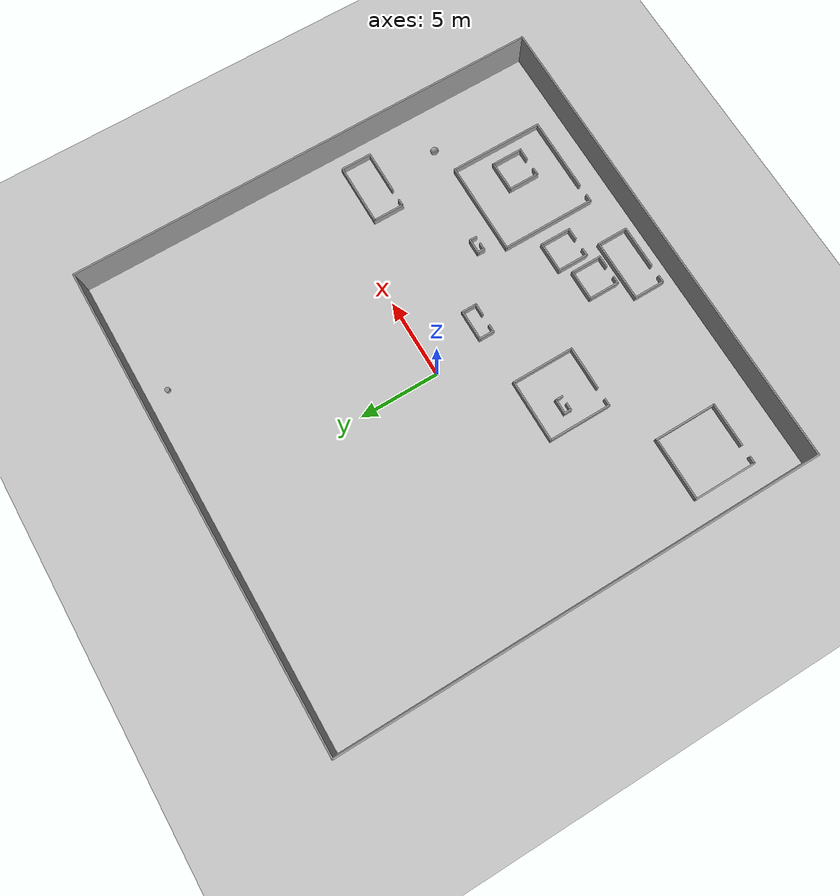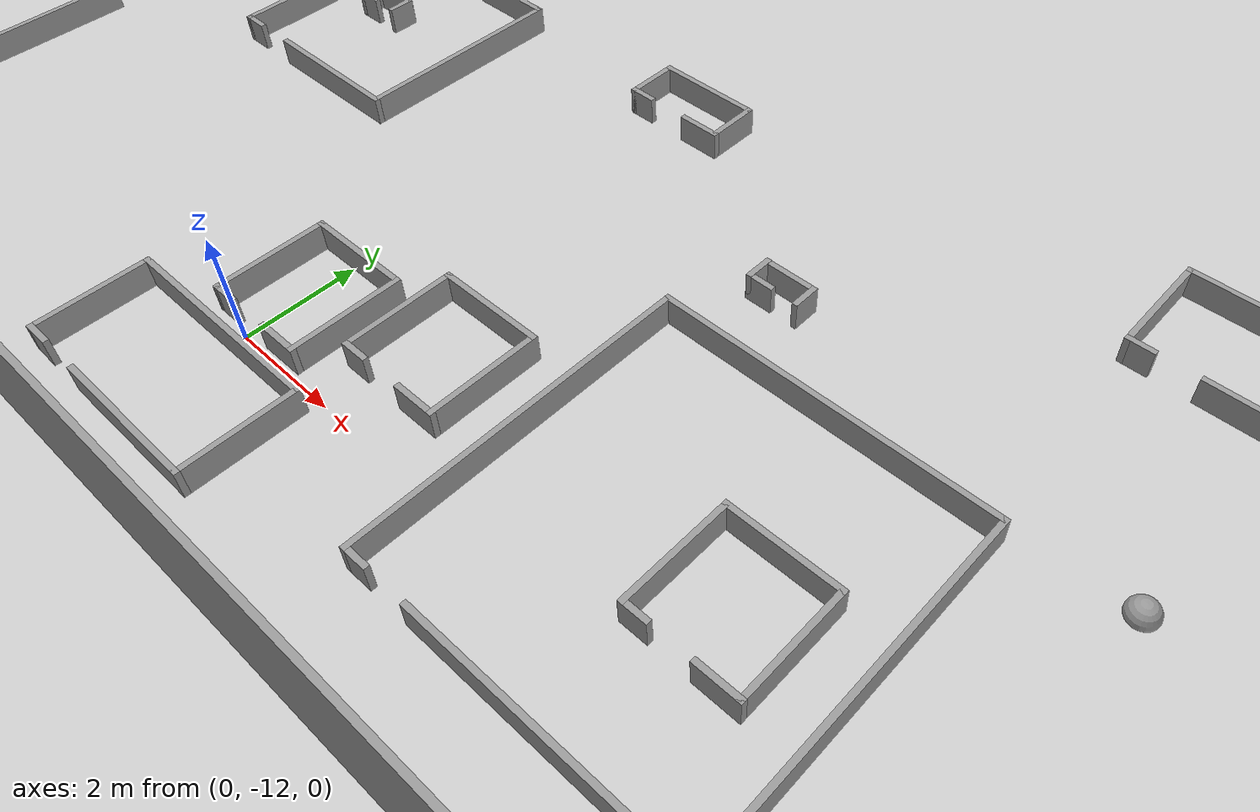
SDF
<sdf version="1.6">
 <world name="default">
  <model name="ground_plane">
   <static>1</static>
   <link name="link">
    <collision name="collision">
     <geometry><plane><normal>0 0 1</normal><size>30 30</size></plane></geometry>
     <surface>
      <contact><collide_bitmask>65535</collide_bitmask></contact>
      <friction><ode><mu>100</mu><mu2>50</mu2></ode></friction>
     </surface>
     <max_contacts>15</max_contacts>
    </collision>
    <visual name="visual">
     <cast_shadows>0</cast_shadows>
     <geometry><plane><normal>0 0 1</normal><size>30 30</size></plane></geometry>
     <material>
      <script><uri>file://media/materials/scripts/gazebo.material</uri><name>Gazebo/Grey</name></script>
     </material>
    </visual>
   </link>
  </model>
  <model name="outsidewall.sdf">
   <link name="Wall_3">
    <collision name="Wall_3_Collision">
     <geometry><box><size>30 0.10 2.5</size></box></geometry>
     <pose>0 0 1.25 0 -0 0</pose>
    </collision>
    <visual name="Wall_3_Visual">
     <pose>0 0 1.25 0 -0 0</pose>
     <geometry><box><size>30 0.10 2.5</size></box></geometry>
     <material>
      <script><uri>file://media/materials/scripts/gazebo.material</uri><name>Gazebo/Grey</name></script>
      <ambient>1 1 1 1</ambient>
     </material>
     <meta><layer>0</layer></meta>
    </visual>
    <pose>0 14.95 0 0 -0 0</pose>
   </link>
   <link name="Wall_5">
    <collision name="Wall_5_Collision">
     <geometry><box><size>30 0.10 2.5</size></box></geometry>
     <pose>0 0 1.25 0 -0 0</pose>
    </collision>
    <visual name="Wall_5_Visual">
     <pose>0 0 1.25 0 -0 0</pose>
     <geometry><box><size>30 0.10 2.5</size></box></geometry>
     <material>
      <script><uri>file://media/materials/scripts/gazebo.material</uri><name>Gazebo/Grey</name></script>
      <ambient>1 1 1 1</ambient>
     </material>
     <meta><layer>0</layer></meta>
    </visual>
    <pose>-14.95 0 0 0 -0 1.5707</pose>
   </link>
   <link name="Wall_6">
    <collision name="Wall_6_Collision">
     <geometry><box><size>30 0.10 2.5</size></box></geometry>
     <pose>0 0 1.25 0 -0 0</pose>
    </collision>
    <visual name="Wall_6_Visual">
     <pose>0 0 1.25 0 -0 0</pose>
     <geometry><box><size>30 0.10 2.5</size></box></geometry>
     <material>
      <script><uri>file://media/materials/scripts/gazebo.material</uri><name>Gazebo/Grey</name></script>
      <ambient>1 1 1 1</ambient>
     </material>
     <meta><layer>0</layer></meta>
    </visual>
    <pose>0 -14.95 0 0 -0 0</pose>
   </link>
   <link name="Wall_7">
    <collision name="Wall_7_Collision">
     <geometry><box><size>30 0.10 2.5</size></box></geometry>
     <pose>0 0 1.25 0 -0 0</pose>
    </collision>
    <visual name="Wall_7_Visual">
     <pose>0 0 1.25 0 -0 0</pose>
     <geometry><box><size>30 0.10 2.5</size></box></geometry>
     <material>
      <script><uri>file://media/materials/scripts/gazebo.material</uri><name>Gazebo/Grey</name></script>
      <ambient>1 1 1 1</ambient>
     </material>
     <meta><layer>0</layer></meta>
    </visual>
    <pose>14.95 0 0 0 -0 1.5707</pose>
   </link>
   <static>1</static>
  </model>
  <model name="shape7">
   <pose>7.4 -10.4 0 0 -0 0</pose>
   <link name="Wall_34">
    <collision name="Wall_34_Collision">
     <geometry><box><size>6 0.1 0.5</size></box></geometry>
     <pose>0 0 0.25 0 -0 0</pose>
    </collision>
    <visual name="Wall_34_Visual">
     <pose>0 0 0.25 0 -0 0</pose>
     <geometry><box><size>6 0.1 0.5</size></box></geometry>
     <material>
      <script><uri>file://media/materials/scripts/gazebo.material</uri><name>Gazebo/Grey</name></script>
      <ambient>1 1 1 1</ambient>
     </material>
     <meta><layer>0</layer></meta>
    </visual>
    <pose>0 2.95 0 0 -0 0</pose>
   </link>
   <link name="Wall_35">
    <collision name="Wall_35_Collision">
     <geometry><box><size>6 0.1 0.5</size></box></geometry>
     <pose>0 0 0.25 0 -0 0</pose>
    </collision>
    <visual name="Wall_35_Visual">
     <pose>0 0 0.25 0 -0 0</pose>
     <geometry><box><size>6 0.1 0.5</size></box></geometry>
     <material>
      <script><uri>file://media/materials/scripts/gazebo.material</uri><name>Gazebo/Grey</name></script>
      <ambient>1 1 1 1</ambient>
     </material>
     <meta><layer>0</layer></meta>
    </visual>
    <pose>2.95 0 0 0 -0 -1.5708</pose>
   </link>
   <link name="Wall_36">
    <collision name="Wall_36_Collision">
     <geometry><box><size>4.8 0.1 0.5</size></box></geometry>
     <pose>0 0 0.25 0 -0 0</pose>
    </collision>
    <visual name="Wall_36_Visual">
     <pose>0 0 0.25 0 -0 0</pose>
     <geometry><box><size>4.8 0.1 0.5</size></box></geometry>
     <material>
      <script><uri>file://media/materials/scripts/gazebo.material</uri><name>Gazebo/Grey</name></script>
      <ambient>1 1 1 1</ambient>
     </material>
     <meta><layer>0</layer></meta>
    </visual>
    <pose>0.6 -2.95 0 0 -0 3.14159</pose>
   </link>
   <link name="Wall_38">
    <collision name="Wall_38_Collision">
     <geometry><box><size>6 0.1 0.5</size></box></geometry>
     <pose>0 0 0.25 0 -0 0</pose>
    </collision>
    <visual name="Wall_38_Visual">
     <pose>0 0 0.25 0 -0 0</pose>
     <geometry><box><size>6 0.1 0.5</size></box></geometry>
     <material>
      <script><uri>file://media/materials/scripts/gazebo.material</uri><name>Gazebo/Grey</name></script>
      <ambient>1 1 1 1</ambient>
     </material>
     <meta><layer>0</layer></meta>
    </visual>
    <pose>-2.95 0 0 0 -0 -1.5708</pose>
   </link>
   <link name="Wall_39">
    <collision name="Wall_39_Collision">
     <geometry><box><size>0.5 0.1 0.5</size></box></geometry>
     <pose>0 0 0.25 0 -0 0</pose>
    </collision>
    <visual name="Wall_39_Visual">
     <pose>0 0 0.25 0 -0 0</pose>
     <geometry><box><size>0.5 0.1 0.5</size></box></geometry>
     <material>
      <script><uri>file://media/materials/scripts/gazebo.material</uri><name>Gazebo/Grey</name></script>
      <ambient>1 1 1 1</ambient>
     </material>
     <meta><layer>0</layer></meta>
    </visual>
    <pose>-2.75 -2.95 0 0 -0 0</pose>
   </link>
   <static>1</static>
  </model>
  <model name="shape2">
   <pose>11.9 -2.6 0 0 -0 0</pose>
   <link name="Wall_0">
    <collision name="Wall_0_Collision">
     <geometry><box><size>3.98685 0.1 0.5</size></box></geometry>
     <pose>0 0 0.25 0 -0 0</pose>
    </collision>
    <visual name="Wall_0_Visual">
     <pose>0 0 0.25 0 -0 0</pose>
     <geometry><box><size>3.98685 0.1 0.5</size></box></geometry>
     <material>
      <script><uri>file://media/materials/scripts/gazebo.material</uri><name>Gazebo/Grey</name></script>
      <ambient>1 1 1 1</ambient>
     </material>
     <meta><layer>0</layer></meta>
    </visual>
    <pose>0.003288 0.95 0 0 -0 0</pose>
   </link>
   <link name="Wall_1">
    <collision name="Wall_1_Collision">
     <geometry><box><size>2 0.1 0.5</size></box></geometry>
     <pose>0 0 0.25 0 -0 0</pose>
    </collision>
    <visual name="Wall_1_Visual">
     <pose>0 0 0.25 0 -0 0</pose>
     <geometry><box><size>2 0.1 0.5</size></box></geometry>
     <material>
      <script><uri>file://media/materials/scripts/gazebo.material</uri><name>Gazebo/Grey</name></script>
      <ambient>1 1 1 1</ambient>
     </material>
     <meta><layer>0</layer></meta>
    </visual>
    <pose>1.94671 0 0 0 -0 -1.5708</pose>
   </link>
   <link name="Wall_2">
    <collision name="Wall_2_Collision">
     <geometry><box><size>2.8 0.1 0.5</size></box></geometry>
     <pose>0 0 0.25 0 -0 0</pose>
    </collision>
    <visual name="Wall_2_Visual">
     <pose>0 0 0.25 0 -0 0</pose>
     <geometry><box><size>2.8 0.1 0.5</size></box></geometry>
     <material>
      <script><uri>file://media/materials/scripts/gazebo.material</uri><name>Gazebo/Grey</name></script>
      <ambient>1 1 1 1</ambient>
     </material>
     <meta><layer>0</layer></meta>
    </visual>
    <pose>0.596712 -0.95 0 0 -0 3.14159</pose>
   </link>
   <link name="Wall_4">
    <collision name="Wall_4_Collision">
     <geometry><box><size>2 0.1 0.5</size></box></geometry>
     <pose>0 0 0.25 0 -0 0</pose>
    </collision>
    <visual name="Wall_4_Visual">
     <pose>0 0 0.25 0 -0 0</pose>
     <geometry><box><size>2 0.1 0.5</size></box></geometry>
     <material>
      <script><uri>file://media/materials/scripts/gazebo.material</uri><name>Gazebo/Grey</name></script>
      <ambient>1 1 1 1</ambient>
     </material>
     <meta><layer>0</layer></meta>
    </visual>
    <pose>-1.94671 0 0 0 -0 -1.5708</pose>
   </link>
   <link name="Wall_5">
    <collision name="Wall_5_Collision">
     <geometry><box><size>0.5 0.1 0.5</size></box></geometry>
     <pose>0 0 0.25 0 -0 0</pose>
    </collision>
    <visual name="Wall_5_Visual">
     <pose>0 0 0.25 0 -0 0</pose>
     <geometry><box><size>0.5 0.1 0.5</size></box></geometry>
     <material>
      <script><uri>file://media/materials/scripts/gazebo.material</uri><name>Gazebo/Grey</name></script>
      <ambient>1 1 1 1</ambient>
     </material>
     <meta><layer>0</layer></meta>
    </visual>
    <pose>-1.74671 -0.95 0 0 -0 0</pose>
   </link>
   <static>1</static>
  </model>
  <model name="cylinder_d=30">
   <link name="link_0">
    <inertial>
     <mass>1</mass>
     <inertia><ixx>0.145833</ixx><ixy>0</ixy><ixz>0</ixz><iyy>0.145833</iyy><iyz>0</iyz><izz>0.125</izz></inertia>
    </inertial>
    <pose>7.05 13.65 0 0 -0 0</pose>
    <visual name="visual">
     <geometry><cylinder><radius>0.15</radius><length>0.5</length></cylinder></geometry>
     <material>
      <lighting>1</lighting>
      <script><uri>file://media/materials/scripts/gazebo.material</uri><name>Gazebo/Grey</name></script>
      <shader type="vertex"><normal_map>__default__</normal_map></shader>
      <ambient>0.3 0.3 0.3 1</ambient>
      <diffuse>0.7 0.7 0.7 1</diffuse>
      <specular>0.01 0.01 0.01 1</specular>
      <emissive>0 0 0 1</emissive>
     </material>
    </visual>
    <collision name="collision">
     <geometry><cylinder><radius>0.15</radius><length>0.5</length></cylinder></geometry>
     <surface>
      <friction>
       <ode><mu>1</mu><mu2>1</mu2><fdir1>0 0 0</fdir1><slip1>0</slip1><slip2>0</slip2></ode>
       <torsional>
        <coefficient>1</coefficient>
        <patch_radius>0</patch_radius>
        <surface_radius>0</surface_radius>
        <use_patch_radius>1</use_patch_radius>
        <ode><slip>0</slip></ode>
       </torsional>
      </friction>
      <bounce><restitution_coefficient>0</restitution_coefficient><threshold>1e+06</threshold></bounce>
      <contact>
       <collide_without_contact>0</collide_without_contact>
       <collide_without_contact_bitmask>1</collide_without_contact_bitmask>
       <collide_bitmask>1</collide_bitmask>
       <ode>
        <soft_cfm>0</soft_cfm>
        <soft_erp>0.2</soft_erp>
        <kp>1e+13</kp>
        <kd>1</kd>
        <max_vel>0.01</max_vel>
        <min_depth>0</min_depth>
       </ode>
       <bullet>
        <split_impulse>1</split_impulse>
        <split_impulse_penetration_threshold>-0.01</split_impulse_penetration_threshold>
        <soft_cfm>0</soft_cfm>
        <soft_erp>0.2</soft_erp>
        <kp>1e+13</kp>
        <kd>1</kd>
       </bullet>
      </contact>
     </surface>
    </collision>
   </link>
   <static>0</static>
  </model>
  <model name="shape5">
   <pose>2.6 -10.3 0 0 -0 0</pose>
   <link name="Wall_20">
    <collision name="Wall_20_Collision">
     <geometry><box><size>2 0.1 0.5</size></box></geometry>
     <pose>0 0 0.25 0 -0 0</pose>
    </collision>
    <visual name="Wall_20_Visual">
     <pose>0 0 0.25 0 -0 0</pose>
     <geometry><box><size>2 0.1 0.5</size></box></geometry>
     <material>
      <script><uri>file://media/materials/scripts/gazebo.material</uri><name>Gazebo/Grey</name></script>
      <ambient>1 1 1 1</ambient>
     </material>
     <meta><layer>0</layer></meta>
    </visual>
    <pose>-0 0.95 0 0 -0 0</pose>
   </link>
   <link name="Wall_21">
    <collision name="Wall_21_Collision">
     <geometry><box><size>2 0.1 0.5</size></box></geometry>
     <pose>0 0 0.25 0 -0 0</pose>
    </collision>
    <visual name="Wall_21_Visual">
     <pose>0 0 0.25 0 -0 0</pose>
     <geometry><box><size>2 0.1 0.5</size></box></geometry>
     <material>
      <script><uri>file://media/materials/scripts/gazebo.material</uri><name>Gazebo/Grey</name></script>
      <ambient>1 1 1 1</ambient>
     </material>
     <meta><layer>0</layer></meta>
    </visual>
    <pose>0.95 0 0 0 -0 -1.5708</pose>
   </link>
   <link name="Wall_22">
    <collision name="Wall_22_Collision">
     <geometry><box><size>0.8 0.1 0.5</size></box></geometry>
     <pose>0 0 0.25 0 -0 0</pose>
    </collision>
    <visual name="Wall_22_Visual">
     <pose>0 0 0.25 0 -0 0</pose>
     <geometry><box><size>0.8 0.1 0.5</size></box></geometry>
     <material>
      <script><uri>file://media/materials/scripts/gazebo.material</uri><name>Gazebo/Grey</name></script>
      <ambient>1 1 1 1</ambient>
     </material>
     <meta><layer>0</layer></meta>
    </visual>
    <pose>0.6 -0.95 0 0 -0 3.14159</pose>
   </link>
   <link name="Wall_24">
    <collision name="Wall_24_Collision">
     <geometry><box><size>2 0.1 0.5</size></box></geometry>
     <pose>0 0 0.25 0 -0 0</pose>
    </collision>
    <visual name="Wall_24_Visual">
     <pose>0 0 0.25 0 -0 0</pose>
     <geometry><box><size>2 0.1 0.5</size></box></geometry>
     <material>
      <script><uri>file://media/materials/scripts/gazebo.material</uri><name>Gazebo/Grey</name></script>
      <ambient>1 1 1 1</ambient>
     </material>
     <meta><layer>0</layer></meta>
    </visual>
    <pose>-0.95 0 0 0 -0 -1.5708</pose>
   </link>
   <link name="Wall_25">
    <collision name="Wall_25_Collision">
     <geometry><box><size>0.5 0.1 0.5</size></box></geometry>
     <pose>0 0 0.25 0 -0 0</pose>
    </collision>
    <visual name="Wall_25_Visual">
     <pose>0 0 0.25 0 -0 0</pose>
     <geometry><box><size>0.5 0.1 0.5</size></box></geometry>
     <material>
      <script><uri>file://media/materials/scripts/gazebo.material</uri><name>Gazebo/Grey</name></script>
      <ambient>1 1 1 1</ambient>
     </material>
     <meta><layer>0</layer></meta>
    </visual>
    <pose>-0.75 -0.95 0 0 -0 0</pose>
   </link>
   <static>1</static>
  </model>
  <model name="ball_d=50">
   <link name="link_1">
    <inertial>
     <mass>1</mass>
     <inertia><ixx>0.1</ixx><ixy>0</ixy><ixz>0</ixz><iyy>0.1</iyy><iyz>0</iyz><izz>0.1</izz></inertia>
    </inertial>
    <pose>12.25 -7.15 0 0 -0 0</pose>
    <visual name="visual">
     <geometry><sphere><radius>0.25</radius></sphere></geometry>
     <material>
      <lighting>1</lighting>
      <script><uri>file://media/materials/scripts/gazebo.material</uri><name>Gazebo/Grey</name></script>
      <shader type="vertex"><normal_map>__default__</normal_map></shader>
      <ambient>0.3 0.3 0.3 1</ambient>
      <diffuse>0.7 0.7 0.7 1</diffuse>
      <specular>0.01 0.01 0.01 1</specular>
      <emissive>0 0 0 1</emissive>
     </material>
    </visual>
    <collision name="collision">
     <geometry><sphere><radius>0.25</radius></sphere></geometry>
     <surface>
      <friction>
       <ode><mu>1</mu><mu2>1</mu2><fdir1>0 0 0</fdir1><slip1>0</slip1><slip2>0</slip2></ode>
       <torsional>
        <coefficient>1</coefficient>
        <patch_radius>0</patch_radius>
        <surface_radius>0</surface_radius>
        <use_patch_radius>1</use_patch_radius>
        <ode><slip>0</slip></ode>
       </torsional>
      </friction>
      <bounce><restitution_coefficient>0</restitution_coefficient><threshold>1e+06</threshold></bounce>
      <contact>
       <collide_without_contact>0</collide_without_contact>
       <collide_without_contact_bitmask>1</collide_without_contact_bitmask>
       <collide_bitmask>1</collide_bitmask>
       <ode>
        <soft_cfm>0</soft_cfm>
        <soft_erp>0.2</soft_erp>
        <kp>1e+13</kp>
        <kd>1</kd>
        <max_vel>0.01</max_vel>
        <min_depth>0</min_depth>
       </ode>
       <bullet>
        <split_impulse>1</split_impulse>
        <split_impulse_penetration_threshold>-0.01</split_impulse_penetration_threshold>
        <soft_cfm>0</soft_cfm>
        <soft_erp>0.2</soft_erp>
        <kp>1e+13</kp>
        <kd>1</kd>
       </bullet>
      </contact>
     </surface>
    </collision>
   </link>
   <static>0</static>
  </model>
  <model name="shape6">
   <pose>-4.7 -5.4 0 0 -0 0</pose>
   <link name="Wall_27">
    <collision name="Wall_27_Collision">
     <geometry><box><size>4 0.1 0.5</size></box></geometry>
     <pose>0 0 0.25 0 -0 0</pose>
    </collision>
    <visual name="Wall_27_Visual">
     <pose>0 0 0.25 0 -0 0</pose>
     <geometry><box><size>4 0.1 0.5</size></box></geometry>
     <material>
      <script><uri>file://media/materials/scripts/gazebo.material</uri><name>Gazebo/Grey</name></script>
      <ambient>1 1 1 1</ambient>
     </material>
     <meta><layer>0</layer></meta>
    </visual>
    <pose>0 1.95 0 0 -0 0</pose>
   </link>
   <link name="Wall_28">
    <collision name="Wall_28_Collision">
     <geometry><box><size>4 0.1 0.5</size></box></geometry>
     <pose>0 0 0.25 0 -0 0</pose>
    </collision>
    <visual name="Wall_28_Visual">
     <pose>0 0 0.25 0 -0 0</pose>
     <geometry><box><size>4 0.1 0.5</size></box></geometry>
     <material>
      <script><uri>file://media/materials/scripts/gazebo.material</uri><name>Gazebo/Grey</name></script>
      <ambient>1 1 1 1</ambient>
     </material>
     <meta><layer>0</layer></meta>
    </visual>
    <pose>1.95 -0 0 0 -0 -1.5708</pose>
   </link>
   <link name="Wall_29">
    <collision name="Wall_29_Collision">
     <geometry><box><size>2.8 0.1 0.5</size></box></geometry>
     <pose>0 0 0.25 0 -0 0</pose>
    </collision>
    <visual name="Wall_29_Visual">
     <pose>0 0 0.25 0 -0 0</pose>
     <geometry><box><size>2.8 0.1 0.5</size></box></geometry>
     <material>
      <script><uri>file://media/materials/scripts/gazebo.material</uri><name>Gazebo/Grey</name></script>
      <ambient>1 1 1 1</ambient>
     </material>
     <meta><layer>0</layer></meta>
    </visual>
    <pose>0.6 -1.95 0 0 -0 3.14159</pose>
   </link>
   <link name="Wall_31">
    <collision name="Wall_31_Collision">
     <geometry><box><size>4 0.1 0.5</size></box></geometry>
     <pose>0 0 0.25 0 -0 0</pose>
    </collision>
    <visual name="Wall_31_Visual">
     <pose>0 0 0.25 0 -0 0</pose>
     <geometry><box><size>4 0.1 0.5</size></box></geometry>
     <material>
      <script><uri>file://media/materials/scripts/gazebo.material</uri><name>Gazebo/Grey</name></script>
      <ambient>1 1 1 1</ambient>
     </material>
     <meta><layer>0</layer></meta>
    </visual>
    <pose>-1.95 -0 0 0 -0 -1.5708</pose>
   </link>
   <link name="Wall_32">
    <collision name="Wall_32_Collision">
     <geometry><box><size>0.5 0.1 0.5</size></box></geometry>
     <pose>0 0 0.25 0 -0 0</pose>
    </collision>
    <visual name="Wall_32_Visual">
     <pose>0 0 0.25 0 -0 0</pose>
     <geometry><box><size>0.5 0.1 0.5</size></box></geometry>
     <material>
      <script><uri>file://media/materials/scripts/gazebo.material</uri><name>Gazebo/Grey</name></script>
      <ambient>1 1 1 1</ambient>
     </material>
     <meta><layer>0</layer></meta>
    </visual>
    <pose>-1.75 -1.95 0 0 -0 0</pose>
   </link>
   <static>1</static>
  </model>
  <model name="shape2">
   <pose>-0.1 -13.2 0 0 -0 0</pose>
   <link name="Wall_0">
    <collision name="Wall_0_Collision">
     <geometry><box><size>3.98685 0.1 0.5</size></box></geometry>
     <pose>0 0 0.25 0 -0 0</pose>
    </collision>
    <visual name="Wall_0_Visual">
     <pose>0 0 0.25 0 -0 0</pose>
     <geometry><box><size>3.98685 0.1 0.5</size></box></geometry>
     <material>
      <script><uri>file://media/materials/scripts/gazebo.material</uri><name>Gazebo/Grey</name></script>
      <ambient>1 1 1 1</ambient>
     </material>
     <meta><layer>0</layer></meta>
    </visual>
    <pose>0.003288 0.95 0 0 -0 0</pose>
   </link>
   <link name="Wall_1">
    <collision name="Wall_1_Collision">
     <geometry><box><size>2 0.1 0.5</size></box></geometry>
     <pose>0 0 0.25 0 -0 0</pose>
    </collision>
    <visual name="Wall_1_Visual">
     <pose>0 0 0.25 0 -0 0</pose>
     <geometry><box><size>2 0.1 0.5</size></box></geometry>
     <material>
      <script><uri>file://media/materials/scripts/gazebo.material</uri><name>Gazebo/Grey</name></script>
      <ambient>1 1 1 1</ambient>
     </material>
     <meta><layer>0</layer></meta>
    </visual>
    <pose>1.94671 0 0 0 -0 -1.5708</pose>
   </link>
   <link name="Wall_2">
    <collision name="Wall_2_Collision">
     <geometry><box><size>2.8 0.1 0.5</size></box></geometry>
     <pose>0 0 0.25 0 -0 0</pose>
    </collision>
    <visual name="Wall_2_Visual">
     <pose>0 0 0.25 0 -0 0</pose>
     <geometry><box><size>2.8 0.1 0.5</size></box></geometry>
     <material>
      <script><uri>file://media/materials/scripts/gazebo.material</uri><name>Gazebo/Grey</name></script>
      <ambient>1 1 1 1</ambient>
     </material>
     <meta><layer>0</layer></meta>
    </visual>
    <pose>0.596712 -0.95 0 0 -0 3.14159</pose>
   </link>
   <link name="Wall_4">
    <collision name="Wall_4_Collision">
     <geometry><box><size>2 0.1 0.5</size></box></geometry>
     <pose>0 0 0.25 0 -0 0</pose>
    </collision>
    <visual name="Wall_4_Visual">
     <pose>0 0 0.25 0 -0 0</pose>
     <geometry><box><size>2 0.1 0.5</size></box></geometry>
     <material>
      <script><uri>file://media/materials/scripts/gazebo.material</uri><name>Gazebo/Grey</name></script>
      <ambient>1 1 1 1</ambient>
     </material>
     <meta><layer>0</layer></meta>
    </visual>
    <pose>-1.94671 0 0 0 -0 -1.5708</pose>
   </link>
   <link name="Wall_5">
    <collision name="Wall_5_Collision">
     <geometry><box><size>0.5 0.1 0.5</size></box></geometry>
     <pose>0 0 0.25 0 -0 0</pose>
    </collision>
    <visual name="Wall_5_Visual">
     <pose>0 0 0.25 0 -0 0</pose>
     <geometry><box><size>0.5 0.1 0.5</size></box></geometry>
     <material>
      <script><uri>file://media/materials/scripts/gazebo.material</uri><name>Gazebo/Grey</name></script>
      <ambient>1 1 1 1</ambient>
     </material>
     <meta><layer>0</layer></meta>
    </visual>
    <pose>-1.74671 -0.95 0 0 -0 0</pose>
   </link>
   <static>1</static>
  </model>
  <model name="shape6">
   <pose>-11.6 -10.5 0 0 -0 0</pose>
   <link name="Wall_27">
    <collision name="Wall_27_Collision">
     <geometry><box><size>4 0.1 0.5</size></box></geometry>
     <pose>0 0 0.25 0 -0 0</pose>
    </collision>
    <visual name="Wall_27_Visual">
     <pose>0 0 0.25 0 -0 0</pose>
     <geometry><box><size>4 0.1 0.5</size></box></geometry>
     <material>
      <script><uri>file://media/materials/scripts/gazebo.material</uri><name>Gazebo/Grey</name></script>
      <ambient>1 1 1 1</ambient>
     </material>
     <meta><layer>0</layer></meta>
    </visual>
    <pose>0 1.95 0 0 -0 0</pose>
   </link>
   <link name="Wall_28">
    <collision name="Wall_28_Collision">
     <geometry><box><size>4 0.1 0.5</size></box></geometry>
     <pose>0 0 0.25 0 -0 0</pose>
    </collision>
    <visual name="Wall_28_Visual">
     <pose>0 0 0.25 0 -0 0</pose>
     <geometry><box><size>4 0.1 0.5</size></box></geometry>
     <material>
      <script><uri>file://media/materials/scripts/gazebo.material</uri><name>Gazebo/Grey</name></script>
      <ambient>1 1 1 1</ambient>
     </material>
     <meta><layer>0</layer></meta>
    </visual>
    <pose>1.95 -0 0 0 -0 -1.5708</pose>
   </link>
   <link name="Wall_29">
    <collision name="Wall_29_Collision">
     <geometry><box><size>2.8 0.1 0.5</size></box></geometry>
     <pose>0 0 0.25 0 -0 0</pose>
    </collision>
    <visual name="Wall_29_Visual">
     <pose>0 0 0.25 0 -0 0</pose>
     <geometry><box><size>2.8 0.1 0.5</size></box></geometry>
     <material>
      <script><uri>file://media/materials/scripts/gazebo.material</uri><name>Gazebo/Grey</name></script>
      <ambient>1 1 1 1</ambient>
     </material>
     <meta><layer>0</layer></meta>
    </visual>
    <pose>0.6 -1.95 0 0 -0 3.14159</pose>
   </link>
   <link name="Wall_31">
    <collision name="Wall_31_Collision">
     <geometry><box><size>4 0.1 0.5</size></box></geometry>
     <pose>0 0 0.25 0 -0 0</pose>
    </collision>
    <visual name="Wall_31_Visual">
     <pose>0 0 0.25 0 -0 0</pose>
     <geometry><box><size>4 0.1 0.5</size></box></geometry>
     <material>
      <script><uri>file://media/materials/scripts/gazebo.material</uri><name>Gazebo/Grey</name></script>
      <ambient>1 1 1 1</ambient>
     </material>
     <meta><layer>0</layer></meta>
    </visual>
    <pose>-1.95 -0 0 0 -0 -1.5708</pose>
   </link>
   <link name="Wall_32">
    <collision name="Wall_32_Collision">
     <geometry><box><size>0.5 0.1 0.5</size></box></geometry>
     <pose>0 0 0.25 0 -0 0</pose>
    </collision>
    <visual name="Wall_32_Visual">
     <pose>0 0 0.25 0 -0 0</pose>
     <geometry><box><size>0.5 0.1 0.5</size></box></geometry>
     <material>
      <script><uri>file://media/materials/scripts/gazebo.material</uri><name>Gazebo/Grey</name></script>
      <ambient>1 1 1 1</ambient>
     </material>
     <meta><layer>0</layer></meta>
    </visual>
    <pose>-1.75 -1.95 0 0 -0 0</pose>
   </link>
   <static>1</static>
  </model>
  <model name="shape5">
   <pose>8.5 -10.6 0 0 -0 0</pose>
   <link name="Wall_20">
    <collision name="Wall_20_Collision">
     <geometry><box><size>2 0.1 0.5</size></box></geometry>
     <pose>0 0 0.25 0 -0 0</pose>
    </collision>
    <visual name="Wall_20_Visual">
     <pose>0 0 0.25 0 -0 0</pose>
     <geometry><box><size>2 0.1 0.5</size></box></geometry>
     <material>
      <script><uri>file://media/materials/scripts/gazebo.material</uri><name>Gazebo/Grey</name></script>
      <ambient>1 1 1 1</ambient>
     </material>
     <meta><layer>0</layer></meta>
    </visual>
    <pose>-0 0.95 0 0 -0 0</pose>
   </link>
   <link name="Wall_21">
    <collision name="Wall_21_Collision">
     <geometry><box><size>2 0.1 0.5</size></box></geometry>
     <pose>0 0 0.25 0 -0 0</pose>
    </collision>
    <visual name="Wall_21_Visual">
     <pose>0 0 0.25 0 -0 0</pose>
     <geometry><box><size>2 0.1 0.5</size></box></geometry>
     <material>
      <script><uri>file://media/materials/scripts/gazebo.material</uri><name>Gazebo/Grey</name></script>
      <ambient>1 1 1 1</ambient>
     </material>
     <meta><layer>0</layer></meta>
    </visual>
    <pose>0.95 0 0 0 -0 -1.5708</pose>
   </link>
   <link name="Wall_22">
    <collision name="Wall_22_Collision">
     <geometry><box><size>0.8 0.1 0.5</size></box></geometry>
     <pose>0 0 0.25 0 -0 0</pose>
    </collision>
    <visual name="Wall_22_Visual">
     <pose>0 0 0.25 0 -0 0</pose>
     <geometry><box><size>0.8 0.1 0.5</size></box></geometry>
     <material>
      <script><uri>file://media/materials/scripts/gazebo.material</uri><name>Gazebo/Grey</name></script>
      <ambient>1 1 1 1</ambient>
     </material>
     <meta><layer>0</layer></meta>
    </visual>
    <pose>0.6 -0.95 0 0 -0 3.14159</pose>
   </link>
   <link name="Wall_24">
    <collision name="Wall_24_Collision">
     <geometry><box><size>2 0.1 0.5</size></box></geometry>
     <pose>0 0 0.25 0 -0 0</pose>
    </collision>
    <visual name="Wall_24_Visual">
     <pose>0 0 0.25 0 -0 0</pose>
     <geometry><box><size>2 0.1 0.5</size></box></geometry>
     <material>
      <script><uri>file://media/materials/scripts/gazebo.material</uri><name>Gazebo/Grey</name></script>
      <ambient>1 1 1 1</ambient>
     </material>
     <meta><layer>0</layer></meta>
    </visual>
    <pose>-0.95 0 0 0 -0 -1.5708</pose>
   </link>
   <link name="Wall_25">
    <collision name="Wall_25_Collision">
     <geometry><box><size>0.5 0.1 0.5</size></box></geometry>
     <pose>0 0 0.25 0 -0 0</pose>
    </collision>
    <visual name="Wall_25_Visual">
     <pose>0 0 0.25 0 -0 0</pose>
     <geometry><box><size>0.5 0.1 0.5</size></box></geometry>
     <material>
      <script><uri>file://media/materials/scripts/gazebo.material</uri><name>Gazebo/Grey</name></script>
      <ambient>1 1 1 1</ambient>
     </material>
     <meta><layer>0</layer></meta>
    </visual>
    <pose>-0.75 -0.95 0 0 -0 0</pose>
   </link>
   <static>1</static>
  </model>
  <model name="shape0">
   <pose>5.5 -6.05 0 0 -0 0</pose>
   <link name="Wall_0">
    <pose>0 0.2 0 0 -0 0</pose>
    <inertial>
     <mass>1</mass>
     <inertia><ixx>1</ixx><ixy>0</ixy><ixz>0</ixz><iyy>1</iyy><iyz>0</iyz><izz>1</izz></inertia>
    </inertial>
    <visual name="Wall_0_Visual">
     <pose>0 0 0.25 0 -0 0</pose>
     <geometry><box><size>1 0.1 0.5</size></box></geometry>
     <material>
      <script><uri>file://media/materials/scripts/gazebo.material</uri><name>Gazebo/Grey</name></script>
      <ambient>1 1 1 1</ambient>
      <shader type="vertex"><normal_map>__default__</normal_map></shader>
      <diffuse>0.7 0.7 0.7 1</diffuse>
      <specular>0.01 0.01 0.01 1</specular>
      <emissive>0 0 0 1</emissive>
     </material>
     <meta><layer>0</layer></meta>
    </visual>
    <collision name="Wall_0_Collision">
     <pose>0 0 0.25 0 -0 0</pose>
     <geometry><box><size>1 0.1 0.5</size></box></geometry>
     <surface>
      <friction>
       <ode><mu>1</mu><mu2>1</mu2><fdir1>0 0 0</fdir1><slip1>0</slip1><slip2>0</slip2></ode>
       <torsional>
        <coefficient>1</coefficient>
        <patch_radius>0</patch_radius>
        <surface_radius>0</surface_radius>
        <use_patch_radius>1</use_patch_radius>
        <ode><slip>0</slip></ode>
       </torsional>
      </friction>
      <bounce><restitution_coefficient>0</restitution_coefficient><threshold>1e+06</threshold></bounce>
      <contact>
       <collide_without_contact>0</collide_without_contact>
       <collide_without_contact_bitmask>1</collide_without_contact_bitmask>
       <collide_bitmask>1</collide_bitmask>
       <ode>
        <soft_cfm>0</soft_cfm>
        <soft_erp>0.2</soft_erp>
        <kp>1e+13</kp>
        <kd>1</kd>
        <max_vel>0.01</max_vel>
        <min_depth>0</min_depth>
       </ode>
       <bullet>
        <split_impulse>1</split_impulse>
        <split_impulse_penetration_threshold>-0.01</split_impulse_penetration_threshold>
        <soft_cfm>0</soft_cfm>
        <soft_erp>0.2</soft_erp>
        <kp>1e+13</kp>
        <kd>1</kd>
       </bullet>
      </contact>
     </surface>
    </collision>
   </link>
   <link name="Wall_2">
    <pose>-0.45 0 0.01 0 0 -1.5708</pose>
    <inertial>
     <mass>1</mass>
     <inertia><ixx>1</ixx><ixy>0</ixy><ixz>0</ixz><iyy>1</iyy><iyz>0</iyz><izz>1</izz></inertia>
    </inertial>
    <visual name="Wall_2_Visual">
     <pose>0 0 0.25 0 -0 0</pose>
     <geometry><box><size>0.5 0.1 0.5</size></box></geometry>
     <material>
      <script><uri>file://media/materials/scripts/gazebo.material</uri><name>Gazebo/Grey</name></script>
      <ambient>1 1 1 1</ambient>
      <shader type="vertex"><normal_map>__default__</normal_map></shader>
      <diffuse>0.7 0.7 0.7 1</diffuse>
      <specular>0.01 0.01 0.01 1</specular>
      <emissive>0 0 0 1</emissive>
     </material>
     <meta><layer>0</layer></meta>
    </visual>
    <collision name="Wall_2_Collision">
     <pose>0 0 0.25 0 -0 0</pose>
     <geometry><box><size>0.5 0.1 0.5</size></box></geometry>
     <surface>
      <friction>
       <ode><mu>1</mu><mu2>1</mu2><fdir1>0 0 0</fdir1><slip1>0</slip1><slip2>0</slip2></ode>
       <torsional>
        <coefficient>1</coefficient>
        <patch_radius>0</patch_radius>
        <surface_radius>0</surface_radius>
        <use_patch_radius>1</use_patch_radius>
        <ode><slip>0</slip></ode>
       </torsional>
      </friction>
      <bounce><restitution_coefficient>0</restitution_coefficient><threshold>1e+06</threshold></bounce>
      <contact>
       <collide_without_contact>0</collide_without_contact>
       <collide_without_contact_bitmask>1</collide_without_contact_bitmask>
       <collide_bitmask>1</collide_bitmask>
       <ode>
        <soft_cfm>0</soft_cfm>
        <soft_erp>0.2</soft_erp>
        <kp>1e+13</kp>
        <kd>1</kd>
        <max_vel>0.01</max_vel>
        <min_depth>0</min_depth>
       </ode>
       <bullet>
        <split_impulse>1</split_impulse>
        <split_impulse_penetration_threshold>-0.01</split_impulse_penetration_threshold>
        <soft_cfm>0</soft_cfm>
        <soft_erp>0.2</soft_erp>
        <kp>1e+13</kp>
        <kd>1</kd>
       </bullet>
      </contact>
     </surface>
    </collision>
   </link>
   <link name="Wall_4">
    <pose>0.45 0 0 0 0 -1.5708</pose>
    <inertial>
     <mass>1</mass>
     <inertia><ixx>1</ixx><ixy>0</ixy><ixz>0</ixz><iyy>1</iyy><iyz>0</iyz><izz>1</izz></inertia>
    </inertial>
    <visual name="Wall_4_Visual">
     <pose>0 0 0.25 0 -0 0</pose>
     <geometry><box><size>0.5 0.1 0.5</size></box></geometry>
     <material>
      <script><uri>file://media/materials/scripts/gazebo.material</uri><name>Gazebo/Grey</name></script>
      <ambient>1 1 1 1</ambient>
      <shader type="vertex"><normal_map>__default__</normal_map></shader>
      <diffuse>0.7 0.7 0.7 1</diffuse>
      <specular>0.01 0.01 0.01 1</specular>
      <emissive>0 0 0 1</emissive>
     </material>
     <meta><layer>0</layer></meta>
    </visual>
    <collision name="Wall_4_Collision">
     <pose>0 0 0.25 0 -0 0</pose>
     <geometry><box><size>0.5 0.1 0.5</size></box></geometry>
     <surface>
      <friction>
       <ode><mu>1</mu><mu2>1</mu2><fdir1>0 0 0</fdir1><slip1>0</slip1><slip2>0</slip2></ode>
       <torsional>
        <coefficient>1</coefficient>
        <patch_radius>0</patch_radius>
        <surface_radius>0</surface_radius>
        <use_patch_radius>1</use_patch_radius>
        <ode><slip>0</slip></ode>
       </torsional>
      </friction>
      <bounce><restitution_coefficient>0</restitution_coefficient><threshold>1e+06</threshold></bounce>
      <contact>
       <collide_without_contact>0</collide_without_contact>
       <collide_without_contact_bitmask>1</collide_without_contact_bitmask>
       <collide_bitmask>1</collide_bitmask>
       <ode>
        <soft_cfm>0</soft_cfm>
        <soft_erp>0.2</soft_erp>
        <kp>1e+13</kp>
        <kd>1</kd>
        <max_vel>0.01</max_vel>
        <min_depth>0</min_depth>
       </ode>
       <bullet>
        <split_impulse>1</split_impulse>
        <split_impulse_penetration_threshold>-0.01</split_impulse_penetration_threshold>
        <soft_cfm>0</soft_cfm>
        <soft_erp>0.2</soft_erp>
        <kp>1e+13</kp>
        <kd>1</kd>
       </bullet>
      </contact>
     </surface>
    </collision>
   </link>
   <link name="Wall_7">
    <pose>-0.25 -0.2 0 0 -0 0</pose>
    <inertial>
     <mass>1</mass>
     <inertia><ixx>1</ixx><ixy>0</ixy><ixz>0</ixz><iyy>1</iyy><iyz>0</iyz><izz>1</izz></inertia>
    </inertial>
    <visual name="Wall_7_Visual">
     <pose>0 0 0.25 0 -0 0</pose>
     <geometry><box><size>0.5 0.1 0.5</size></box></geometry>
     <material>
      <script><uri>file://media/materials/scripts/gazebo.material</uri><name>Gazebo/Grey</name></script>
      <ambient>1 1 1 1</ambient>
      <shader type="vertex"><normal_map>__default__</normal_map></shader>
      <diffuse>0.7 0.7 0.7 1</diffuse>
      <specular>0.01 0.01 0.01 1</specular>
      <emissive>0 0 0 1</emissive>
     </material>
     <meta><layer>0</layer></meta>
    </visual>
    <collision name="Wall_7_Collision">
     <pose>0 0 0.25 0 -0 0</pose>
     <geometry><box><size>0.5 0.1 0.5</size></box></geometry>
     <surface>
      <friction>
       <ode><mu>1</mu><mu2>1</mu2><fdir1>0 0 0</fdir1><slip1>0</slip1><slip2>0</slip2></ode>
       <torsional>
        <coefficient>1</coefficient>
        <patch_radius>0</patch_radius>
        <surface_radius>0</surface_radius>
        <use_patch_radius>1</use_patch_radius>
        <ode><slip>0</slip></ode>
       </torsional>
      </friction>
      <bounce><restitution_coefficient>0</restitution_coefficient><threshold>1e+06</threshold></bounce>
      <contact>
       <collide_without_contact>0</collide_without_contact>
       <collide_without_contact_bitmask>1</collide_without_contact_bitmask>
       <collide_bitmask>1</collide_bitmask>
       <ode>
        <soft_cfm>0</soft_cfm>
        <soft_erp>0.2</soft_erp>
        <kp>1e+13</kp>
        <kd>1</kd>
        <max_vel>0.01</max_vel>
        <min_depth>0</min_depth>
       </ode>
       <bullet>
        <split_impulse>1</split_impulse>
        <split_impulse_penetration_threshold>-0.01</split_impulse_penetration_threshold>
        <soft_cfm>0</soft_cfm>
        <soft_erp>0.2</soft_erp>
        <kp>1e+13</kp>
        <kd>1</kd>
       </bullet>
      </contact>
     </surface>
    </collision>
   </link>
   <static>1</static>
  </model>
  <model name="shape0">
   <pose>-5.3 -5.15 0 0 -0 0</pose>
   <link name="Wall_0">
    <pose>0 0.2 0 0 -0 0</pose>
    <inertial>
     <mass>1</mass>
     <inertia><ixx>1</ixx><ixy>0</ixy><ixz>0</ixz><iyy>1</iyy><iyz>0</iyz><izz>1</izz></inertia>
    </inertial>
    <visual name="Wall_0_Visual">
     <pose>0 0 0.25 0 -0 0</pose>
     <geometry><box><size>1 0.1 0.5</size></box></geometry>
     <material>
      <script><uri>file://media/materials/scripts/gazebo.material</uri><name>Gazebo/Grey</name></script>
      <ambient>1 1 1 1</ambient>
      <shader type="vertex"><normal_map>__default__</normal_map></shader>
      <diffuse>0.7 0.7 0.7 1</diffuse>
      <specular>0.01 0.01 0.01 1</specular>
      <emissive>0 0 0 1</emissive>
     </material>
     <meta><layer>0</layer></meta>
    </visual>
    <collision name="Wall_0_Collision">
     <pose>0 0 0.25 0 -0 0</pose>
     <geometry><box><size>1 0.1 0.5</size></box></geometry>
     <surface>
      <friction>
       <ode><mu>1</mu><mu2>1</mu2><fdir1>0 0 0</fdir1><slip1>0</slip1><slip2>0</slip2></ode>
       <torsional>
        <coefficient>1</coefficient>
        <patch_radius>0</patch_radius>
        <surface_radius>0</surface_radius>
        <use_patch_radius>1</use_patch_radius>
        <ode><slip>0</slip></ode>
       </torsional>
      </friction>
      <bounce><restitution_coefficient>0</restitution_coefficient><threshold>1e+06</threshold></bounce>
      <contact>
       <collide_without_contact>0</collide_without_contact>
       <collide_without_contact_bitmask>1</collide_without_contact_bitmask>
       <collide_bitmask>1</collide_bitmask>
       <ode>
        <soft_cfm>0</soft_cfm>
        <soft_erp>0.2</soft_erp>
        <kp>1e+13</kp>
        <kd>1</kd>
        <max_vel>0.01</max_vel>
        <min_depth>0</min_depth>
       </ode>
       <bullet>
        <split_impulse>1</split_impulse>
        <split_impulse_penetration_threshold>-0.01</split_impulse_penetration_threshold>
        <soft_cfm>0</soft_cfm>
        <soft_erp>0.2</soft_erp>
        <kp>1e+13</kp>
        <kd>1</kd>
       </bullet>
      </contact>
     </surface>
    </collision>
   </link>
   <link name="Wall_2">
    <pose>-0.45 0 0.01 0 0 -1.5708</pose>
    <inertial>
     <mass>1</mass>
     <inertia><ixx>1</ixx><ixy>0</ixy><ixz>0</ixz><iyy>1</iyy><iyz>0</iyz><izz>1</izz></inertia>
    </inertial>
    <visual name="Wall_2_Visual">
     <pose>0 0 0.25 0 -0 0</pose>
     <geometry><box><size>0.5 0.1 0.5</size></box></geometry>
     <material>
      <script><uri>file://media/materials/scripts/gazebo.material</uri><name>Gazebo/Grey</name></script>
      <ambient>1 1 1 1</ambient>
      <shader type="vertex"><normal_map>__default__</normal_map></shader>
      <diffuse>0.7 0.7 0.7 1</diffuse>
      <specular>0.01 0.01 0.01 1</specular>
      <emissive>0 0 0 1</emissive>
     </material>
     <meta><layer>0</layer></meta>
    </visual>
    <collision name="Wall_2_Collision">
     <pose>0 0 0.25 0 -0 0</pose>
     <geometry><box><size>0.5 0.1 0.5</size></box></geometry>
     <surface>
      <friction>
       <ode><mu>1</mu><mu2>1</mu2><fdir1>0 0 0</fdir1><slip1>0</slip1><slip2>0</slip2></ode>
       <torsional>
        <coefficient>1</coefficient>
        <patch_radius>0</patch_radius>
        <surface_radius>0</surface_radius>
        <use_patch_radius>1</use_patch_radius>
        <ode><slip>0</slip></ode>
       </torsional>
      </friction>
      <bounce><restitution_coefficient>0</restitution_coefficient><threshold>1e+06</threshold></bounce>
      <contact>
       <collide_without_contact>0</collide_without_contact>
       <collide_without_contact_bitmask>1</collide_without_contact_bitmask>
       <collide_bitmask>1</collide_bitmask>
       <ode>
        <soft_cfm>0</soft_cfm>
        <soft_erp>0.2</soft_erp>
        <kp>1e+13</kp>
        <kd>1</kd>
        <max_vel>0.01</max_vel>
        <min_depth>0</min_depth>
       </ode>
       <bullet>
        <split_impulse>1</split_impulse>
        <split_impulse_penetration_threshold>-0.01</split_impulse_penetration_threshold>
        <soft_cfm>0</soft_cfm>
        <soft_erp>0.2</soft_erp>
        <kp>1e+13</kp>
        <kd>1</kd>
       </bullet>
      </contact>
     </surface>
    </collision>
   </link>
   <link name="Wall_4">
    <pose>0.45 0 0 0 0 -1.5708</pose>
    <inertial>
     <mass>1</mass>
     <inertia><ixx>1</ixx><ixy>0</ixy><ixz>0</ixz><iyy>1</iyy><iyz>0</iyz><izz>1</izz></inertia>
    </inertial>
    <visual name="Wall_4_Visual">
     <pose>0 0 0.25 0 -0 0</pose>
     <geometry><box><size>0.5 0.1 0.5</size></box></geometry>
     <material>
      <script><uri>file://media/materials/scripts/gazebo.material</uri><name>Gazebo/Grey</name></script>
      <ambient>1 1 1 1</ambient>
      <shader type="vertex"><normal_map>__default__</normal_map></shader>
      <diffuse>0.7 0.7 0.7 1</diffuse>
      <specular>0.01 0.01 0.01 1</specular>
      <emissive>0 0 0 1</emissive>
     </material>
     <meta><layer>0</layer></meta>
    </visual>
    <collision name="Wall_4_Collision">
     <pose>0 0 0.25 0 -0 0</pose>
     <geometry><box><size>0.5 0.1 0.5</size></box></geometry>
     <surface>
      <friction>
       <ode><mu>1</mu><mu2>1</mu2><fdir1>0 0 0</fdir1><slip1>0</slip1><slip2>0</slip2></ode>
       <torsional>
        <coefficient>1</coefficient>
        <patch_radius>0</patch_radius>
        <surface_radius>0</surface_radius>
        <use_patch_radius>1</use_patch_radius>
        <ode><slip>0</slip></ode>
       </torsional>
      </friction>
      <bounce><restitution_coefficient>0</restitution_coefficient><threshold>1e+06</threshold></bounce>
      <contact>
       <collide_without_contact>0</collide_without_contact>
       <collide_without_contact_bitmask>1</collide_without_contact_bitmask>
       <collide_bitmask>1</collide_bitmask>
       <ode>
        <soft_cfm>0</soft_cfm>
        <soft_erp>0.2</soft_erp>
        <kp>1e+13</kp>
        <kd>1</kd>
        <max_vel>0.01</max_vel>
        <min_depth>0</min_depth>
       </ode>
       <bullet>
        <split_impulse>1</split_impulse>
        <split_impulse_penetration_threshold>-0.01</split_impulse_penetration_threshold>
        <soft_cfm>0</soft_cfm>
        <soft_erp>0.2</soft_erp>
        <kp>1e+13</kp>
        <kd>1</kd>
       </bullet>
      </contact>
     </surface>
    </collision>
   </link>
   <link name="Wall_7">
    <pose>-0.25 -0.2 0 0 -0 0</pose>
    <inertial>
     <mass>1</mass>
     <inertia><ixx>1</ixx><ixy>0</ixy><ixz>0</ixz><iyy>1</iyy><iyz>0</iyz><izz>1</izz></inertia>
    </inertial>
    <visual name="Wall_7_Visual">
     <pose>0 0 0.25 0 -0 0</pose>
     <geometry><box><size>0.5 0.1 0.5</size></box></geometry>
     <material>
      <script><uri>file://media/materials/scripts/gazebo.material</uri><name>Gazebo/Grey</name></script>
      <ambient>1 1 1 1</ambient>
      <shader type="vertex"><normal_map>__default__</normal_map></shader>
      <diffuse>0.7 0.7 0.7 1</diffuse>
      <specular>0.01 0.01 0.01 1</specular>
      <emissive>0 0 0 1</emissive>
     </material>
     <meta><layer>0</layer></meta>
    </visual>
    <collision name="Wall_7_Collision">
     <pose>0 0 0.25 0 -0 0</pose>
     <geometry><box><size>0.5 0.1 0.5</size></box></geometry>
     <surface>
      <friction>
       <ode><mu>1</mu><mu2>1</mu2><fdir1>0 0 0</fdir1><slip1>0</slip1><slip2>0</slip2></ode>
       <torsional>
        <coefficient>1</coefficient>
        <patch_radius>0</patch_radius>
        <surface_radius>0</surface_radius>
        <use_patch_radius>1</use_patch_radius>
        <ode><slip>0</slip></ode>
       </torsional>
      </friction>
      <bounce><restitution_coefficient>0</restitution_coefficient><threshold>1e+06</threshold></bounce>
      <contact>
       <collide_without_contact>0</collide_without_contact>
       <collide_without_contact_bitmask>1</collide_without_contact_bitmask>
       <collide_bitmask>1</collide_bitmask>
       <ode>
        <soft_cfm>0</soft_cfm>
        <soft_erp>0.2</soft_erp>
        <kp>1e+13</kp>
        <kd>1</kd>
        <max_vel>0.01</max_vel>
        <min_depth>0</min_depth>
       </ode>
       <bullet>
        <split_impulse>1</split_impulse>
        <split_impulse_penetration_threshold>-0.01</split_impulse_penetration_threshold>
        <soft_cfm>0</soft_cfm>
        <soft_erp>0.2</soft_erp>
        <kp>1e+13</kp>
        <kd>1</kd>
       </bullet>
      </contact>
     </surface>
    </collision>
   </link>
   <static>1</static>
  </model>
  <model name="shape1">
   <pose>1.4 -3.6 0 0 -0 0</pose>
   <link name="Wall_0">
    <collision name="Wall_0_Collision">
     <geometry><box><size>2 0.1 0.5</size></box></geometry>
     <pose>0 0 0.25 0 -0 0</pose>
    </collision>
    <visual name="Wall_0_Visual">
     <pose>0 0 0.25 0 -0 0</pose>
     <geometry><box><size>2 0.1 0.5</size></box></geometry>
     <material>
      <script><uri>file://media/materials/scripts/gazebo.material</uri><name>Gazebo/Grey</name></script>
      <ambient>1 1 1 1</ambient>
     </material>
     <meta><layer>0</layer></meta>
    </visual>
    <pose>0 0.45 0 0 -0 0</pose>
   </link>
   <link name="Wall_1">
    <collision name="Wall_1_Collision">
     <geometry><box><size>1 0.1 0.5</size></box></geometry>
     <pose>0 0 0.25 0 -0 0</pose>
    </collision>
    <visual name="Wall_1_Visual">
     <pose>0 0 0.25 0 -0 0</pose>
     <geometry><box><size>1 0.1 0.5</size></box></geometry>
     <material>
      <script><uri>file://media/materials/scripts/gazebo.material</uri><name>Gazebo/Grey</name></script>
      <ambient>1 1 1 1</ambient>
     </material>
     <meta><layer>0</layer></meta>
    </visual>
    <pose>0.95 -0 0 0 -0 -1.5708</pose>
   </link>
   <link name="Wall_2">
    <collision name="Wall_2_Collision">
     <geometry><box><size>0.8 0.1 0.5</size></box></geometry>
     <pose>0 0 0.25 0 -0 0</pose>
    </collision>
    <visual name="Wall_2_Visual">
     <pose>0 0 0.25 0 -0 0</pose>
     <geometry><box><size>0.8 0.1 0.5</size></box></geometry>
     <material>
      <script><uri>file://media/materials/scripts/gazebo.material</uri><name>Gazebo/Grey</name></script>
      <ambient>1 1 1 1</ambient>
     </material>
     <meta><layer>0</layer></meta>
    </visual>
    <pose>0.6 -0.45 0 0 -0 3.14159</pose>
   </link>
   <link name="Wall_4">
    <collision name="Wall_4_Collision">
     <geometry><box><size>1 0.1 0.5</size></box></geometry>
     <pose>0 0 0.25 0 -0 0</pose>
    </collision>
    <visual name="Wall_4_Visual">
     <pose>0 0 0.25 0 -0 0</pose>
     <geometry><box><size>1 0.1 0.5</size></box></geometry>
     <material>
      <script><uri>file://media/materials/scripts/gazebo.material</uri><name>Gazebo/Grey</name></script>
      <ambient>1 1 1 1</ambient>
     </material>
     <meta><layer>0</layer></meta>
    </visual>
    <pose>-0.95 -0 0 0 -0 -1.5708</pose>
   </link>
   <link name="Wall_5">
    <collision name="Wall_5_Collision">
     <geometry><box><size>0.499474 0.1 0.5</size></box></geometry>
     <pose>0 0 0.25 0 -0 0</pose>
    </collision>
    <visual name="Wall_5_Visual">
     <pose>0 0 0.25 0 -0 0</pose>
     <geometry><box><size>0.499474 0.1 0.5</size></box></geometry>
     <material>
      <script><uri>file://media/materials/scripts/gazebo.material</uri><name>Gazebo/Grey</name></script>
      <ambient>1 1 1 1</ambient>
     </material>
     <meta><layer>0</layer></meta>
    </visual>
    <pose>-0.75 -0.45 0 0 -0 0</pose>
   </link>
   <static>1</static>
  </model>
  <model name="shape5">
   <pose>0.2 -10.9 0 0 -0 0</pose>
   <link name="Wall_20">
    <collision name="Wall_20_Collision">
     <geometry><box><size>2 0.1 0.5</size></box></geometry>
     <pose>0 0 0.25 0 -0 0</pose>
    </collision>
    <visual name="Wall_20_Visual">
     <pose>0 0 0.25 0 -0 0</pose>
     <geometry><box><size>2 0.1 0.5</size></box></geometry>
     <material>
      <script><uri>file://media/materials/scripts/gazebo.material</uri><name>Gazebo/Grey</name></script>
      <ambient>1 1 1 1</ambient>
     </material>
     <meta><layer>0</layer></meta>
    </visual>
    <pose>-0 0.95 0 0 -0 0</pose>
   </link>
   <link name="Wall_21">
    <collision name="Wall_21_Collision">
     <geometry><box><size>2 0.1 0.5</size></box></geometry>
     <pose>0 0 0.25 0 -0 0</pose>
    </collision>
    <visual name="Wall_21_Visual">
     <pose>0 0 0.25 0 -0 0</pose>
     <geometry><box><size>2 0.1 0.5</size></box></geometry>
     <material>
      <script><uri>file://media/materials/scripts/gazebo.material</uri><name>Gazebo/Grey</name></script>
      <ambient>1 1 1 1</ambient>
     </material>
     <meta><layer>0</layer></meta>
    </visual>
    <pose>0.95 0 0 0 -0 -1.5708</pose>
   </link>
   <link name="Wall_22">
    <collision name="Wall_22_Collision">
     <geometry><box><size>0.8 0.1 0.5</size></box></geometry>
     <pose>0 0 0.25 0 -0 0</pose>
    </collision>
    <visual name="Wall_22_Visual">
     <pose>0 0 0.25 0 -0 0</pose>
     <geometry><box><size>0.8 0.1 0.5</size></box></geometry>
     <material>
      <script><uri>file://media/materials/scripts/gazebo.material</uri><name>Gazebo/Grey</name></script>
      <ambient>1 1 1 1</ambient>
     </material>
     <meta><layer>0</layer></meta>
    </visual>
    <pose>0.6 -0.95 0 0 -0 3.14159</pose>
   </link>
   <link name="Wall_24">
    <collision name="Wall_24_Collision">
     <geometry><box><size>2 0.1 0.5</size></box></geometry>
     <pose>0 0 0.25 0 -0 0</pose>
    </collision>
    <visual name="Wall_24_Visual">
     <pose>0 0 0.25 0 -0 0</pose>
     <geometry><box><size>2 0.1 0.5</size></box></geometry>
     <material>
      <script><uri>file://media/materials/scripts/gazebo.material</uri><name>Gazebo/Grey</name></script>
      <ambient>1 1 1 1</ambient>
     </material>
     <meta><layer>0</layer></meta>
    </visual>
    <pose>-0.95 0 0 0 -0 -1.5708</pose>
   </link>
   <link name="Wall_25">
    <collision name="Wall_25_Collision">
     <geometry><box><size>0.5 0.1 0.5</size></box></geometry>
     <pose>0 0 0.25 0 -0 0</pose>
    </collision>
    <visual name="Wall_25_Visual">
     <pose>0 0 0.25 0 -0 0</pose>
     <geometry><box><size>0.5 0.1 0.5</size></box></geometry>
     <material>
      <script><uri>file://media/materials/scripts/gazebo.material</uri><name>Gazebo/Grey</name></script>
      <ambient>1 1 1 1</ambient>
     </material>
     <meta><layer>0</layer></meta>
    </visual>
    <pose>-0.75 -0.95 0 0 -0 0</pose>
   </link>
   <static>1</static>
  </model>
 </world>
</sdf>
